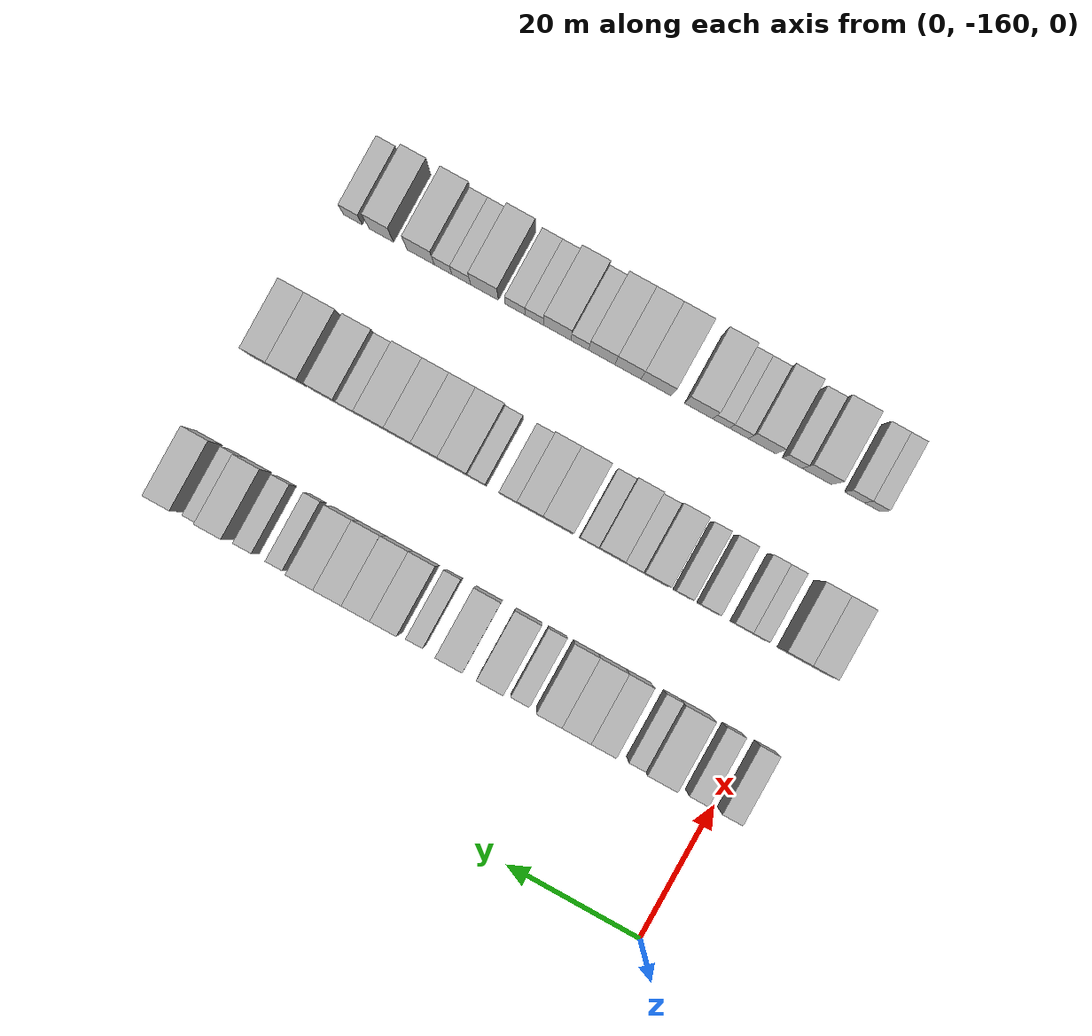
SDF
<sdf version="1.6">
 <world name="default">
  <model name="building_20">
   <static>1</static>
   <pose>25.0000 -161.9389 0 0.000000 0.000000 0.000000</pose>
   <link name="link">
    <pose>0 0 3.00 0 0 0</pose>
    <collision name="collision"><geometry><box><size>10.0000 2.9617 6.0000</size></box></geometry></collision>
    <visual name="visual">
     <cast_shadows>0</cast_shadows>
     <geometry><box><size>10.0000 2.9617 6.0000</size></box></geometry>
     <material>
      <script>
       <uri>model://HANNAS_wall/materials/scripts</uri>
       <uri>model://HANNAS_wall/materials/textures</uri>
       <name>vrc/HANNAS_wall</name>
      </script>
     </material>
    </visual>
   </link>
  </model>
  <model name="building_21">
   <static>1</static>
   <pose>25.0000 -157.0666 0 0.000000 0.000000 0.000000</pose>
   <link name="link">
    <pose>0 0 3.00 0 0 0</pose>
    <collision name="collision"><geometry><box><size>10.0000 2.7829 6.0000</size></box></geometry></collision>
    <visual name="visual">
     <cast_shadows>0</cast_shadows>
     <geometry><box><size>10.0000 2.7829 6.0000</size></box></geometry>
     <material>
      <script>
       <uri>model://HANNAS_wall/materials/scripts</uri>
       <uri>model://HANNAS_wall/materials/textures</uri>
       <name>vrc/HANNAS_wall</name>
      </script>
     </material>
    </visual>
   </link>
  </model>
  <model name="building_22">
   <static>1</static>
   <pose>25.0000 -151.5205 0 0.000000 0.000000 0.000000</pose>
   <link name="link">
    <pose>0 0 4.50 0 0 0</pose>
    <collision name="collision"><geometry><box><size>10.0000 4.3093 9.0000</size></box></geometry></collision>
    <visual name="visual">
     <cast_shadows>0</cast_shadows>
     <geometry><box><size>10.0000 4.3093 9.0000</size></box></geometry>
     <material>
      <script>
       <uri>model://HANNAS_wall/materials/scripts</uri>
       <uri>model://HANNAS_wall/materials/textures</uri>
       <name>vrc/HANNAS_wall</name>
      </script>
     </material>
    </visual>
   </link>
  </model>
  <model name="building_23">
   <static>1</static>
   <pose>25.0000 -148.1344 0 0.000000 0.000000 0.000000</pose>
   <link name="link">
    <pose>0 0 3.00 0 0 0</pose>
    <collision name="collision"><geometry><box><size>10.0000 2.4628 6.0000</size></box></geometry></collision>
    <visual name="visual">
     <cast_shadows>0</cast_shadows>
     <geometry><box><size>10.0000 2.4628 6.0000</size></box></geometry>
     <material>
      <script>
       <uri>model://HANNAS_wall/materials/scripts</uri>
       <uri>model://HANNAS_wall/materials/textures</uri>
       <name>vrc/HANNAS_wall</name>
      </script>
     </material>
    </visual>
   </link>
  </model>
  <model name="building_24">
   <static>1</static>
   <pose>25.0000 -143.0938 0 0.000000 0.000000 0.000000</pose>
   <link name="link">
    <pose>0 0 4.50 0 0 0</pose>
    <collision name="collision"><geometry><box><size>10.0000 3.6184 9.0000</size></box></geometry></collision>
    <visual name="visual">
     <cast_shadows>0</cast_shadows>
     <geometry><box><size>10.0000 3.6184 9.0000</size></box></geometry>
     <material>
      <script>
       <uri>model://HANNAS_wall/materials/scripts</uri>
       <uri>model://HANNAS_wall/materials/textures</uri>
       <name>vrc/HANNAS_wall</name>
      </script>
     </material>
    </visual>
   </link>
  </model>
  <model name="building_25">
   <static>1</static>
   <pose>25.0000 -139.2067 0 0.000000 0.000000 0.000000</pose>
   <link name="link">
    <pose>0 0 4.50 0 0 0</pose>
    <collision name="collision"><geometry><box><size>10.0000 4.1557 9.0000</size></box></geometry></collision>
    <visual name="visual">
     <cast_shadows>0</cast_shadows>
     <geometry><box><size>10.0000 4.1557 9.0000</size></box></geometry>
     <material>
      <script>
       <uri>model://HANNAS_wall/materials/scripts</uri>
       <uri>model://HANNAS_wall/materials/textures</uri>
       <name>vrc/HANNAS_wall</name>
      </script>
     </material>
    </visual>
   </link>
  </model>
  <model name="building_26">
   <static>1</static>
   <pose>25.0000 -135.2966 0 0.000000 0.000000 0.000000</pose>
   <link name="link">
    <pose>0 0 4.50 0 0 0</pose>
    <collision name="collision"><geometry><box><size>10.0000 3.6646 9.0000</size></box></geometry></collision>
    <visual name="visual">
     <cast_shadows>0</cast_shadows>
     <geometry><box><size>10.0000 3.6646 9.0000</size></box></geometry>
     <material>
      <script>
       <uri>model://HANNAS_wall/materials/scripts</uri>
       <uri>model://HANNAS_wall/materials/textures</uri>
       <name>vrc/HANNAS_wall</name>
      </script>
     </material>
    </visual>
   </link>
  </model>
  <model name="building_27">
   <static>1</static>
   <pose>25.0000 -131.1052 0 0.000000 0.000000 0.000000</pose>
   <link name="link">
    <pose>0 0 3.00 0 0 0</pose>
    <collision name="collision"><geometry><box><size>10.0000 2.7181 6.0000</size></box></geometry></collision>
    <visual name="visual">
     <cast_shadows>0</cast_shadows>
     <geometry><box><size>10.0000 2.7181 6.0000</size></box></geometry>
     <material>
      <script>
       <uri>model://HANNAS_wall/materials/scripts</uri>
       <uri>model://HANNAS_wall/materials/textures</uri>
       <name>vrc/HANNAS_wall</name>
      </script>
     </material>
    </visual>
   </link>
  </model>
  <model name="building_28">
   <static>1</static>
   <pose>25.0000 -126.8285 0 0.000000 0.000000 0.000000</pose>
   <link name="link">
    <pose>0 0 4.50 0 0 0</pose>
    <collision name="collision"><geometry><box><size>10.0000 3.8353 9.0000</size></box></geometry></collision>
    <visual name="visual">
     <cast_shadows>0</cast_shadows>
     <geometry><box><size>10.0000 3.8353 9.0000</size></box></geometry>
     <material>
      <script>
       <uri>model://HANNAS_wall/materials/scripts</uri>
       <uri>model://HANNAS_wall/materials/textures</uri>
       <name>vrc/HANNAS_wall</name>
      </script>
     </material>
    </visual>
   </link>
  </model>
  <model name="building_29">
   <static>1</static>
   <pose>25.0000 -120.9563 0 0.000000 0.000000 0.000000</pose>
   <link name="link">
    <pose>0 0 4.50 0 0 0</pose>
    <collision name="collision"><geometry><box><size>10.0000 3.9092 9.0000</size></box></geometry></collision>
    <visual name="visual">
     <cast_shadows>0</cast_shadows>
     <geometry><box><size>10.0000 3.9092 9.0000</size></box></geometry>
     <material>
      <script>
       <uri>model://HANNAS_wall/materials/scripts</uri>
       <uri>model://HANNAS_wall/materials/textures</uri>
       <name>vrc/HANNAS_wall</name>
      </script>
     </material>
    </visual>
   </link>
  </model>
  <model name="building_30">
   <static>1</static>
   <pose>25.0000 -115.7541 0 0.000000 0.000000 0.000000</pose>
   <link name="link">
    <pose>0 0 3.00 0 0 0</pose>
    <collision name="collision"><geometry><box><size>10.0000 2.4952 6.0000</size></box></geometry></collision>
    <visual name="visual">
     <cast_shadows>0</cast_shadows>
     <geometry><box><size>10.0000 2.4952 6.0000</size></box></geometry>
     <material>
      <script>
       <uri>model://HANNAS_wall/materials/scripts</uri>
       <uri>model://HANNAS_wall/materials/textures</uri>
       <name>vrc/HANNAS_wall</name>
      </script>
     </material>
    </visual>
   </link>
  </model>
  <model name="building_31">
   <static>1</static>
   <pose>25.0000 -111.5837 0 0.000000 0.000000 0.000000</pose>
   <link name="link">
    <pose>0 0 4.50 0 0 0</pose>
    <collision name="collision"><geometry><box><size>10.0000 3.8456 9.0000</size></box></geometry></collision>
    <visual name="visual">
     <cast_shadows>0</cast_shadows>
     <geometry><box><size>10.0000 3.8456 9.0000</size></box></geometry>
     <material>
      <script>
       <uri>model://HANNAS_wall/materials/scripts</uri>
       <uri>model://HANNAS_wall/materials/textures</uri>
       <name>vrc/HANNAS_wall</name>
      </script>
     </material>
    </visual>
   </link>
  </model>
  <model name="building_32">
   <static>1</static>
   <pose>25.0000 -107.6422 0 0.000000 0.000000 0.000000</pose>
   <link name="link">
    <pose>0 0 4.50 0 0 0</pose>
    <collision name="collision"><geometry><box><size>10.0000 4.0375 9.0000</size></box></geometry></collision>
    <visual name="visual">
     <cast_shadows>0</cast_shadows>
     <geometry><box><size>10.0000 4.0375 9.0000</size></box></geometry>
     <material>
      <script>
       <uri>model://HANNAS_wall/materials/scripts</uri>
       <uri>model://HANNAS_wall/materials/textures</uri>
       <name>vrc/HANNAS_wall</name>
      </script>
     </material>
    </visual>
   </link>
  </model>
  <model name="building_33">
   <static>1</static>
   <pose>25.0000 -103.5976 0 0.000000 0.000000 0.000000</pose>
   <link name="link">
    <pose>0 0 4.50 0 0 0</pose>
    <collision name="collision"><geometry><box><size>10.0000 4.0516 9.0000</size></box></geometry></collision>
    <visual name="visual">
     <cast_shadows>0</cast_shadows>
     <geometry><box><size>10.0000 4.0516 9.0000</size></box></geometry>
     <material>
      <script>
       <uri>model://HANNAS_wall/materials/scripts</uri>
       <uri>model://HANNAS_wall/materials/textures</uri>
       <name>vrc/HANNAS_wall</name>
      </script>
     </material>
    </visual>
   </link>
  </model>
  <model name="building_34">
   <static>1</static>
   <pose>25.0000 -99.6055 0 0.000000 0.000000 0.000000</pose>
   <link name="link">
    <pose>0 0 4.50 0 0 0</pose>
    <collision name="collision"><geometry><box><size>10.0000 3.9325 9.0000</size></box></geometry></collision>
    <visual name="visual">
     <cast_shadows>0</cast_shadows>
     <geometry><box><size>10.0000 3.9325 9.0000</size></box></geometry>
     <material>
      <script>
       <uri>model://HANNAS_wall/materials/scripts</uri>
       <uri>model://HANNAS_wall/materials/textures</uri>
       <name>vrc/HANNAS_wall</name>
      </script>
     </material>
    </visual>
   </link>
  </model>
  <model name="building_35">
   <static>1</static>
   <pose>25.0000 -95.4043 0 0.000000 0.000000 0.000000</pose>
   <link name="link">
    <pose>0 0 3.00 0 0 0</pose>
    <collision name="collision"><geometry><box><size>10.0000 2.4700 6.0000</size></box></geometry></collision>
    <visual name="visual">
     <cast_shadows>0</cast_shadows>
     <geometry><box><size>10.0000 2.4700 6.0000</size></box></geometry>
     <material>
      <script>
       <uri>model://HANNAS_wall/materials/scripts</uri>
       <uri>model://HANNAS_wall/materials/textures</uri>
       <name>vrc/HANNAS_wall</name>
      </script>
     </material>
    </visual>
   </link>
  </model>
  <model name="building_36">
   <static>1</static>
   <pose>25.0000 -90.8186 0 0.000000 0.000000 0.000000</pose>
   <link name="link">
    <pose>0 0 3.00 0 0 0</pose>
    <collision name="collision"><geometry><box><size>10.0000 2.7014 6.0000</size></box></geometry></collision>
    <visual name="visual">
     <cast_shadows>0</cast_shadows>
     <geometry><box><size>10.0000 2.7014 6.0000</size></box></geometry>
     <material>
      <script>
       <uri>model://HANNAS_wall/materials/scripts</uri>
       <uri>model://HANNAS_wall/materials/textures</uri>
       <name>vrc/HANNAS_wall</name>
      </script>
     </material>
    </visual>
   </link>
  </model>
  <model name="building_37">
   <static>1</static>
   <pose>25.0000 -86.5181 0 0.000000 0.000000 0.000000</pose>
   <link name="link">
    <pose>0 0 4.50 0 0 0</pose>
    <collision name="collision"><geometry><box><size>10.0000 3.8995 9.0000</size></box></geometry></collision>
    <visual name="visual">
     <cast_shadows>0</cast_shadows>
     <geometry><box><size>10.0000 3.8995 9.0000</size></box></geometry>
     <material>
      <script>
       <uri>model://HANNAS_wall/materials/scripts</uri>
       <uri>model://HANNAS_wall/materials/textures</uri>
       <name>vrc/HANNAS_wall</name>
      </script>
     </material>
    </visual>
   </link>
  </model>
  <model name="building_38">
   <static>1</static>
   <pose>25.0000 -83.3470 0 0.000000 0.000000 0.000000</pose>
   <link name="link">
    <pose>0 0 3.00 0 0 0</pose>
    <collision name="collision"><geometry><box><size>10.0000 2.4427 6.0000</size></box></geometry></collision>
    <visual name="visual">
     <cast_shadows>0</cast_shadows>
     <geometry><box><size>10.0000 2.4427 6.0000</size></box></geometry>
     <material>
      <script>
       <uri>model://HANNAS_wall/materials/scripts</uri>
       <uri>model://HANNAS_wall/materials/textures</uri>
       <name>vrc/HANNAS_wall</name>
      </script>
     </material>
    </visual>
   </link>
  </model>
  <model name="building_39">
   <static>1</static>
   <pose>25.0000 -79.1743 0 0.000000 0.000000 0.000000</pose>
   <link name="link">
    <pose>0 0 4.50 0 0 0</pose>
    <collision name="collision"><geometry><box><size>10.0000 3.9026 9.0000</size></box></geometry></collision>
    <visual name="visual">
     <cast_shadows>0</cast_shadows>
     <geometry><box><size>10.0000 3.9026 9.0000</size></box></geometry>
     <material>
      <script>
       <uri>model://HANNAS_wall/materials/scripts</uri>
       <uri>model://HANNAS_wall/materials/textures</uri>
       <name>vrc/HANNAS_wall</name>
      </script>
     </material>
    </visual>
   </link>
  </model>
  <model name="building_150">
   <static>1</static>
   <pose>47.0000 -162.6714 0 0.000000 0.000000 0.000000</pose>
   <link name="link">
    <pose>0 0 4.50 0 0 0</pose>
    <collision name="collision"><geometry><box><size>10.0000 3.7032 9.0000</size></box></geometry></collision>
    <visual name="visual">
     <cast_shadows>0</cast_shadows>
     <geometry><box><size>10.0000 3.7032 9.0000</size></box></geometry>
     <material>
      <script>
       <uri>model://HANNAS_wall/materials/scripts</uri>
       <uri>model://HANNAS_wall/materials/textures</uri>
       <name>vrc/HANNAS_wall</name>
      </script>
     </material>
    </visual>
   </link>
  </model>
  <model name="building_151">
   <static>1</static>
   <pose>47.0000 -159.0022 0 0.000000 0.000000 0.000000</pose>
   <link name="link">
    <pose>0 0 4.50 0 0 0</pose>
    <collision name="collision"><geometry><box><size>10.0000 3.6352 9.0000</size></box></geometry></collision>
    <visual name="visual">
     <cast_shadows>0</cast_shadows>
     <geometry><box><size>10.0000 3.6352 9.0000</size></box></geometry>
     <material>
      <script>
       <uri>model://HANNAS_wall/materials/scripts</uri>
       <uri>model://HANNAS_wall/materials/textures</uri>
       <name>vrc/HANNAS_wall</name>
      </script>
     </material>
    </visual>
   </link>
  </model>
  <model name="building_152">
   <static>1</static>
   <pose>47.0000 -153.9766 0 0.000000 0.000000 0.000000</pose>
   <link name="link">
    <pose>0 0 3.00 0 0 0</pose>
    <collision name="collision"><geometry><box><size>10.0000 2.4161 6.0000</size></box></geometry></collision>
    <visual name="visual">
     <cast_shadows>0</cast_shadows>
     <geometry><box><size>10.0000 2.4161 6.0000</size></box></geometry>
     <material>
      <script>
       <uri>model://HANNAS_wall/materials/scripts</uri>
       <uri>model://HANNAS_wall/materials/textures</uri>
       <name>vrc/HANNAS_wall</name>
      </script>
     </material>
    </visual>
   </link>
  </model>
  <model name="building_153">
   <static>1</static>
   <pose>47.0000 -151.4672 0 0.000000 0.000000 0.000000</pose>
   <link name="link">
    <pose>0 0 3.00 0 0 0</pose>
    <collision name="collision"><geometry><box><size>10.0000 2.6027 6.0000</size></box></geometry></collision>
    <visual name="visual">
     <cast_shadows>0</cast_shadows>
     <geometry><box><size>10.0000 2.6027 6.0000</size></box></geometry>
     <material>
      <script>
       <uri>model://HANNAS_wall/materials/scripts</uri>
       <uri>model://HANNAS_wall/materials/textures</uri>
       <name>vrc/HANNAS_wall</name>
      </script>
     </material>
    </visual>
   </link>
  </model>
  <model name="building_154">
   <static>1</static>
   <pose>47.0000 -146.6826 0 0.000000 0.000000 0.000000</pose>
   <link name="link">
    <pose>0 0 3.00 0 0 0</pose>
    <collision name="collision"><geometry><box><size>10.0000 2.9665 6.0000</size></box></geometry></collision>
    <visual name="visual">
     <cast_shadows>0</cast_shadows>
     <geometry><box><size>10.0000 2.9665 6.0000</size></box></geometry>
     <material>
      <script>
       <uri>model://HANNAS_wall/materials/scripts</uri>
       <uri>model://HANNAS_wall/materials/textures</uri>
       <name>vrc/HANNAS_wall</name>
      </script>
     </material>
    </visual>
   </link>
  </model>
  <model name="building_155">
   <static>1</static>
   <pose>47.0000 -142.9178 0 0.000000 0.000000 0.000000</pose>
   <link name="link">
    <pose>0 0 3.00 0 0 0</pose>
    <collision name="collision"><geometry><box><size>10.0000 2.5632 6.0000</size></box></geometry></collision>
    <visual name="visual">
     <cast_shadows>0</cast_shadows>
     <geometry><box><size>10.0000 2.5632 6.0000</size></box></geometry>
     <material>
      <script>
       <uri>model://HANNAS_wall/materials/scripts</uri>
       <uri>model://HANNAS_wall/materials/textures</uri>
       <name>vrc/HANNAS_wall</name>
      </script>
     </material>
    </visual>
   </link>
  </model>
  <model name="building_156">
   <static>1</static>
   <pose>47.0000 -138.7678 0 0.000000 0.000000 0.000000</pose>
   <link name="link">
    <pose>0 0 4.50 0 0 0</pose>
    <collision name="collision"><geometry><box><size>10.0000 3.7367 9.0000</size></box></geometry></collision>
    <visual name="visual">
     <cast_shadows>0</cast_shadows>
     <geometry><box><size>10.0000 3.7367 9.0000</size></box></geometry>
     <material>
      <script>
       <uri>model://HANNAS_wall/materials/scripts</uri>
       <uri>model://HANNAS_wall/materials/textures</uri>
       <name>vrc/HANNAS_wall</name>
      </script>
     </material>
    </visual>
   </link>
  </model>
  <model name="building_157">
   <static>1</static>
   <pose>47.0000 -135.4979 0 0.000000 0.000000 0.000000</pose>
   <link name="link">
    <pose>0 0 3.00 0 0 0</pose>
    <collision name="collision"><geometry><box><size>10.0000 2.8031 6.0000</size></box></geometry></collision>
    <visual name="visual">
     <cast_shadows>0</cast_shadows>
     <geometry><box><size>10.0000 2.8031 6.0000</size></box></geometry>
     <material>
      <script>
       <uri>model://HANNAS_wall/materials/scripts</uri>
       <uri>model://HANNAS_wall/materials/textures</uri>
       <name>vrc/HANNAS_wall</name>
      </script>
     </material>
    </visual>
   </link>
  </model>
  <model name="building_158">
   <static>1</static>
   <pose>47.0000 -132.2518 0 0.000000 0.000000 0.000000</pose>
   <link name="link">
    <pose>0 0 4.50 0 0 0</pose>
    <collision name="collision"><geometry><box><size>10.0000 3.6890 9.0000</size></box></geometry></collision>
    <visual name="visual">
     <cast_shadows>0</cast_shadows>
     <geometry><box><size>10.0000 3.6890 9.0000</size></box></geometry>
     <material>
      <script>
       <uri>model://HANNAS_wall/materials/scripts</uri>
       <uri>model://HANNAS_wall/materials/textures</uri>
       <name>vrc/HANNAS_wall</name>
      </script>
     </material>
    </visual>
   </link>
  </model>
  <model name="building_159">
   <static>1</static>
   <pose>47.0000 -129.0463 0 0.000000 0.000000 0.000000</pose>
   <link name="link">
    <pose>0 0 3.00 0 0 0</pose>
    <collision name="collision"><geometry><box><size>10.0000 2.7220 6.0000</size></box></geometry></collision>
    <visual name="visual">
     <cast_shadows>0</cast_shadows>
     <geometry><box><size>10.0000 2.7220 6.0000</size></box></geometry>
     <material>
      <script>
       <uri>model://HANNAS_wall/materials/scripts</uri>
       <uri>model://HANNAS_wall/materials/textures</uri>
       <name>vrc/HANNAS_wall</name>
      </script>
     </material>
    </visual>
   </link>
  </model>
  <model name="building_160">
   <static>1</static>
   <pose>47.0000 -124.4881 0 0.000000 0.000000 0.000000</pose>
   <link name="link">
    <pose>0 0 4.50 0 0 0</pose>
    <collision name="collision"><geometry><box><size>10.0000 4.3946 9.0000</size></box></geometry></collision>
    <visual name="visual">
     <cast_shadows>0</cast_shadows>
     <geometry><box><size>10.0000 4.3946 9.0000</size></box></geometry>
     <material>
      <script>
       <uri>model://HANNAS_wall/materials/scripts</uri>
       <uri>model://HANNAS_wall/materials/textures</uri>
       <name>vrc/HANNAS_wall</name>
      </script>
     </material>
    </visual>
   </link>
  </model>
  <model name="building_161">
   <static>1</static>
   <pose>47.0000 -120.4135 0 0.000000 0.000000 0.000000</pose>
   <link name="link">
    <pose>0 0 4.50 0 0 0</pose>
    <collision name="collision"><geometry><box><size>10.0000 3.7545 9.0000</size></box></geometry></collision>
    <visual name="visual">
     <cast_shadows>0</cast_shadows>
     <geometry><box><size>10.0000 3.7545 9.0000</size></box></geometry>
     <material>
      <script>
       <uri>model://HANNAS_wall/materials/scripts</uri>
       <uri>model://HANNAS_wall/materials/textures</uri>
       <name>vrc/HANNAS_wall</name>
      </script>
     </material>
    </visual>
   </link>
  </model>
  <model name="building_162">
   <static>1</static>
   <pose>47.0000 -117.2018 0 0.000000 0.000000 0.000000</pose>
   <link name="link">
    <pose>0 0 3.00 0 0 0</pose>
    <collision name="collision"><geometry><box><size>10.0000 2.6690 6.0000</size></box></geometry></collision>
    <visual name="visual">
     <cast_shadows>0</cast_shadows>
     <geometry><box><size>10.0000 2.6690 6.0000</size></box></geometry>
     <material>
      <script>
       <uri>model://HANNAS_wall/materials/scripts</uri>
       <uri>model://HANNAS_wall/materials/textures</uri>
       <name>vrc/HANNAS_wall</name>
      </script>
     </material>
    </visual>
   </link>
  </model>
  <model name="building_163">
   <static>1</static>
   <pose>47.0000 -112.5708 0 0.000000 0.000000 0.000000</pose>
   <link name="link">
    <pose>0 0 3.00 0 0 0</pose>
    <collision name="collision"><geometry><box><size>10.0000 2.5929 6.0000</size></box></geometry></collision>
    <visual name="visual">
     <cast_shadows>0</cast_shadows>
     <geometry><box><size>10.0000 2.5929 6.0000</size></box></geometry>
     <material>
      <script>
       <uri>model://HANNAS_wall/materials/scripts</uri>
       <uri>model://HANNAS_wall/materials/textures</uri>
       <name>vrc/HANNAS_wall</name>
      </script>
     </material>
    </visual>
   </link>
  </model>
  <model name="building_164">
   <static>1</static>
   <pose>47.0000 -109.1921 0 0.000000 0.000000 0.000000</pose>
   <link name="link">
    <pose>0 0 4.50 0 0 0</pose>
    <collision name="collision"><geometry><box><size>10.0000 4.1646 9.0000</size></box></geometry></collision>
    <visual name="visual">
     <cast_shadows>0</cast_shadows>
     <geometry><box><size>10.0000 4.1646 9.0000</size></box></geometry>
     <material>
      <script>
       <uri>model://HANNAS_wall/materials/scripts</uri>
       <uri>model://HANNAS_wall/materials/textures</uri>
       <name>vrc/HANNAS_wall</name>
      </script>
     </material>
    </visual>
   </link>
  </model>
  <model name="building_165">
   <static>1</static>
   <pose>47.0000 -105.2063 0 0.000000 0.000000 0.000000</pose>
   <link name="link">
    <pose>0 0 4.50 0 0 0</pose>
    <collision name="collision"><geometry><box><size>10.0000 3.8069 9.0000</size></box></geometry></collision>
    <visual name="visual">
     <cast_shadows>0</cast_shadows>
     <geometry><box><size>10.0000 3.8069 9.0000</size></box></geometry>
     <material>
      <script>
       <uri>model://HANNAS_wall/materials/scripts</uri>
       <uri>model://HANNAS_wall/materials/textures</uri>
       <name>vrc/HANNAS_wall</name>
      </script>
     </material>
    </visual>
   </link>
  </model>
  <model name="building_166">
   <static>1</static>
   <pose>47.0000 -101.3747 0 0.000000 0.000000 0.000000</pose>
   <link name="link">
    <pose>0 0 4.50 0 0 0</pose>
    <collision name="collision"><geometry><box><size>10.0000 3.8563 9.0000</size></box></geometry></collision>
    <visual name="visual">
     <cast_shadows>0</cast_shadows>
     <geometry><box><size>10.0000 3.8563 9.0000</size></box></geometry>
     <material>
      <script>
       <uri>model://HANNAS_wall/materials/scripts</uri>
       <uri>model://HANNAS_wall/materials/textures</uri>
       <name>vrc/HANNAS_wall</name>
      </script>
     </material>
    </visual>
   </link>
  </model>
  <model name="building_167">
   <static>1</static>
   <pose>47.0000 -97.2710 0 0.000000 0.000000 0.000000</pose>
   <link name="link">
    <pose>0 0 4.50 0 0 0</pose>
    <collision name="collision"><geometry><box><size>10.0000 4.3513 9.0000</size></box></geometry></collision>
    <visual name="visual">
     <cast_shadows>0</cast_shadows>
     <geometry><box><size>10.0000 4.3513 9.0000</size></box></geometry>
     <material>
      <script>
       <uri>model://HANNAS_wall/materials/scripts</uri>
       <uri>model://HANNAS_wall/materials/textures</uri>
       <name>vrc/HANNAS_wall</name>
      </script>
     </material>
    </visual>
   </link>
  </model>
  <model name="building_168">
   <static>1</static>
   <pose>47.0000 -93.6409 0 0.000000 0.000000 0.000000</pose>
   <link name="link">
    <pose>0 0 3.00 0 0 0</pose>
    <collision name="collision"><geometry><box><size>10.0000 2.9088 6.0000</size></box></geometry></collision>
    <visual name="visual">
     <cast_shadows>0</cast_shadows>
     <geometry><box><size>10.0000 2.9088 6.0000</size></box></geometry>
     <material>
      <script>
       <uri>model://HANNAS_wall/materials/scripts</uri>
       <uri>model://HANNAS_wall/materials/textures</uri>
       <name>vrc/HANNAS_wall</name>
      </script>
     </material>
    </visual>
   </link>
  </model>
  <model name="building_169">
   <static>1</static>
   <pose>47.0000 -90.1140 0 0.000000 0.000000 0.000000</pose>
   <link name="link">
    <pose>0 0 4.50 0 0 0</pose>
    <collision name="collision"><geometry><box><size>10.0000 4.1450 9.0000</size></box></geometry></collision>
    <visual name="visual">
     <cast_shadows>0</cast_shadows>
     <geometry><box><size>10.0000 4.1450 9.0000</size></box></geometry>
     <material>
      <script>
       <uri>model://HANNAS_wall/materials/scripts</uri>
       <uri>model://HANNAS_wall/materials/textures</uri>
       <name>vrc/HANNAS_wall</name>
      </script>
     </material>
    </visual>
   </link>
  </model>
  <model name="building_170">
   <static>1</static>
   <pose>47.0000 -84.8280 0 0.000000 0.000000 0.000000</pose>
   <link name="link">
    <pose>0 0 4.50 0 0 0</pose>
    <collision name="collision"><geometry><box><size>10.0000 4.4270 9.0000</size></box></geometry></collision>
    <visual name="visual">
     <cast_shadows>0</cast_shadows>
     <geometry><box><size>10.0000 4.4270 9.0000</size></box></geometry>
     <material>
      <script>
       <uri>model://HANNAS_wall/materials/scripts</uri>
       <uri>model://HANNAS_wall/materials/textures</uri>
       <name>vrc/HANNAS_wall</name>
      </script>
     </material>
    </visual>
   </link>
  </model>
  <model name="building_171">
   <static>1</static>
   <pose>47.0000 -80.7574 0 0.000000 0.000000 0.000000</pose>
   <link name="link">
    <pose>0 0 4.50 0 0 0</pose>
    <collision name="collision"><geometry><box><size>10.0000 3.7143 9.0000</size></box></geometry></collision>
    <visual name="visual">
     <cast_shadows>0</cast_shadows>
     <geometry><box><size>10.0000 3.7143 9.0000</size></box></geometry>
     <material>
      <script>
       <uri>model://HANNAS_wall/materials/scripts</uri>
       <uri>model://HANNAS_wall/materials/textures</uri>
       <name>vrc/HANNAS_wall</name>
      </script>
     </material>
    </visual>
   </link>
  </model>
  <model name="building_277">
   <static>1</static>
   <pose>69.0000 -159.2032 0 0.000000 0.000000 0.000000</pose>
   <link name="link">
    <pose>0 0 3.00 0 0 0</pose>
    <collision name="collision"><geometry><box><size>10.0000 2.4557 6.0000</size></box></geometry></collision>
    <visual name="visual">
     <cast_shadows>0</cast_shadows>
     <geometry><box><size>10.0000 2.4557 6.0000</size></box></geometry>
     <material>
      <script>
       <uri>model://HANNAS_wall/materials/scripts</uri>
       <uri>model://HANNAS_wall/materials/textures</uri>
       <name>vrc/HANNAS_wall</name>
      </script>
     </material>
    </visual>
   </link>
  </model>
  <model name="building_278">
   <static>1</static>
   <pose>69.0000 -156.5355 0 0.000000 0.000000 0.000000</pose>
   <link name="link">
    <pose>0 0 3.00 0 0 0</pose>
    <collision name="collision"><geometry><box><size>10.0000 2.8797 6.0000</size></box></geometry></collision>
    <visual name="visual">
     <cast_shadows>0</cast_shadows>
     <geometry><box><size>10.0000 2.8797 6.0000</size></box></geometry>
     <material>
      <script>
       <uri>model://HANNAS_wall/materials/scripts</uri>
       <uri>model://HANNAS_wall/materials/textures</uri>
       <name>vrc/HANNAS_wall</name>
      </script>
     </material>
    </visual>
   </link>
  </model>
  <model name="building_279">
   <static>1</static>
   <pose>69.0000 -150.9187 0 0.000000 0.000000 0.000000</pose>
   <link name="link">
    <pose>0 0 4.50 0 0 0</pose>
    <collision name="collision"><geometry><box><size>10.0000 4.3540 9.0000</size></box></geometry></collision>
    <visual name="visual">
     <cast_shadows>0</cast_shadows>
     <geometry><box><size>10.0000 4.3540 9.0000</size></box></geometry>
     <material>
      <script>
       <uri>model://HANNAS_wall/materials/scripts</uri>
       <uri>model://HANNAS_wall/materials/textures</uri>
       <name>vrc/HANNAS_wall</name>
      </script>
     </material>
    </visual>
   </link>
  </model>
  <model name="building_280">
   <static>1</static>
   <pose>69.0000 -147.2857 0 0.000000 0.000000 0.000000</pose>
   <link name="link">
    <pose>0 0 3.00 0 0 0</pose>
    <collision name="collision"><geometry><box><size>10.0000 2.9120 6.0000</size></box></geometry></collision>
    <visual name="visual">
     <cast_shadows>0</cast_shadows>
     <geometry><box><size>10.0000 2.9120 6.0000</size></box></geometry>
     <material>
      <script>
       <uri>model://HANNAS_wall/materials/scripts</uri>
       <uri>model://HANNAS_wall/materials/textures</uri>
       <name>vrc/HANNAS_wall</name>
      </script>
     </material>
    </visual>
   </link>
  </model>
  <model name="building_281">
   <static>1</static>
   <pose>69.0000 -142.7802 0 0.000000 0.000000 0.000000</pose>
   <link name="link">
    <pose>0 0 4.50 0 0 0</pose>
    <collision name="collision"><geometry><box><size>10.0000 4.0991 9.0000</size></box></geometry></collision>
    <visual name="visual">
     <cast_shadows>0</cast_shadows>
     <geometry><box><size>10.0000 4.0991 9.0000</size></box></geometry>
     <material>
      <script>
       <uri>model://HANNAS_wall/materials/scripts</uri>
       <uri>model://HANNAS_wall/materials/textures</uri>
       <name>vrc/HANNAS_wall</name>
      </script>
     </material>
    </visual>
   </link>
  </model>
  <model name="building_282">
   <static>1</static>
   <pose>69.0000 -139.3374 0 0.000000 0.000000 0.000000</pose>
   <link name="link">
    <pose>0 0 3.00 0 0 0</pose>
    <collision name="collision"><geometry><box><size>10.0000 2.7864 6.0000</size></box></geometry></collision>
    <visual name="visual">
     <cast_shadows>0</cast_shadows>
     <geometry><box><size>10.0000 2.7864 6.0000</size></box></geometry>
     <material>
      <script>
       <uri>model://HANNAS_wall/materials/scripts</uri>
       <uri>model://HANNAS_wall/materials/textures</uri>
       <name>vrc/HANNAS_wall</name>
      </script>
     </material>
    </visual>
   </link>
  </model>
  <model name="building_283">
   <static>1</static>
   <pose>69.0000 -136.6814 0 0.000000 0.000000 0.000000</pose>
   <link name="link">
    <pose>0 0 3.00 0 0 0</pose>
    <collision name="collision"><geometry><box><size>10.0000 2.5257 6.0000</size></box></geometry></collision>
    <visual name="visual">
     <cast_shadows>0</cast_shadows>
     <geometry><box><size>10.0000 2.5257 6.0000</size></box></geometry>
     <material>
      <script>
       <uri>model://HANNAS_wall/materials/scripts</uri>
       <uri>model://HANNAS_wall/materials/textures</uri>
       <name>vrc/HANNAS_wall</name>
      </script>
     </material>
    </visual>
   </link>
  </model>
  <model name="building_284">
   <static>1</static>
   <pose>69.0000 -133.3264 0 0.000000 0.000000 0.000000</pose>
   <link name="link">
    <pose>0 0 4.50 0 0 0</pose>
    <collision name="collision"><geometry><box><size>10.0000 4.1842 9.0000</size></box></geometry></collision>
    <visual name="visual">
     <cast_shadows>0</cast_shadows>
     <geometry><box><size>10.0000 4.1842 9.0000</size></box></geometry>
     <material>
      <script>
       <uri>model://HANNAS_wall/materials/scripts</uri>
       <uri>model://HANNAS_wall/materials/textures</uri>
       <name>vrc/HANNAS_wall</name>
      </script>
     </material>
    </visual>
   </link>
  </model>
  <model name="building_285">
   <static>1</static>
   <pose>69.0000 -126.9853 0 0.000000 0.000000 0.000000</pose>
   <link name="link">
    <pose>0 0 4.50 0 0 0</pose>
    <collision name="collision"><geometry><box><size>10.0000 4.4981 9.0000</size></box></geometry></collision>
    <visual name="visual">
     <cast_shadows>0</cast_shadows>
     <geometry><box><size>10.0000 4.4981 9.0000</size></box></geometry>
     <material>
      <script>
       <uri>model://HANNAS_wall/materials/scripts</uri>
       <uri>model://HANNAS_wall/materials/textures</uri>
       <name>vrc/HANNAS_wall</name>
      </script>
     </material>
    </visual>
   </link>
  </model>
  <model name="building_286">
   <static>1</static>
   <pose>69.0000 -122.7866 0 0.000000 0.000000 0.000000</pose>
   <link name="link">
    <pose>0 0 4.50 0 0 0</pose>
    <collision name="collision"><geometry><box><size>10.0000 3.8992 9.0000</size></box></geometry></collision>
    <visual name="visual">
     <cast_shadows>0</cast_shadows>
     <geometry><box><size>10.0000 3.8992 9.0000</size></box></geometry>
     <material>
      <script>
       <uri>model://HANNAS_wall/materials/scripts</uri>
       <uri>model://HANNAS_wall/materials/textures</uri>
       <name>vrc/HANNAS_wall</name>
      </script>
     </material>
    </visual>
   </link>
  </model>
  <model name="building_287">
   <static>1</static>
   <pose>69.0000 -118.8734 0 0.000000 0.000000 0.000000</pose>
   <link name="link">
    <pose>0 0 4.50 0 0 0</pose>
    <collision name="collision"><geometry><box><size>10.0000 3.9273 9.0000</size></box></geometry></collision>
    <visual name="visual">
     <cast_shadows>0</cast_shadows>
     <geometry><box><size>10.0000 3.9273 9.0000</size></box></geometry>
     <material>
      <script>
       <uri>model://HANNAS_wall/materials/scripts</uri>
       <uri>model://HANNAS_wall/materials/textures</uri>
       <name>vrc/HANNAS_wall</name>
      </script>
     </material>
    </visual>
   </link>
  </model>
  <model name="building_288">
   <static>1</static>
   <pose>69.0000 -115.5879 0 0.000000 0.000000 0.000000</pose>
   <link name="link">
    <pose>0 0 3.00 0 0 0</pose>
    <collision name="collision"><geometry><box><size>10.0000 2.6436 6.0000</size></box></geometry></collision>
    <visual name="visual">
     <cast_shadows>0</cast_shadows>
     <geometry><box><size>10.0000 2.6436 6.0000</size></box></geometry>
     <material>
      <script>
       <uri>model://HANNAS_wall/materials/scripts</uri>
       <uri>model://HANNAS_wall/materials/textures</uri>
       <name>vrc/HANNAS_wall</name>
      </script>
     </material>
    </visual>
   </link>
  </model>
  <model name="building_289">
   <static>1</static>
   <pose>69.0000 -112.2310 0 0.000000 0.000000 0.000000</pose>
   <link name="link">
    <pose>0 0 4.50 0 0 0</pose>
    <collision name="collision"><geometry><box><size>10.0000 4.0703 9.0000</size></box></geometry></collision>
    <visual name="visual">
     <cast_shadows>0</cast_shadows>
     <geometry><box><size>10.0000 4.0703 9.0000</size></box></geometry>
     <material>
      <script>
       <uri>model://HANNAS_wall/materials/scripts</uri>
       <uri>model://HANNAS_wall/materials/textures</uri>
       <name>vrc/HANNAS_wall</name>
      </script>
     </material>
    </visual>
   </link>
  </model>
  <model name="building_290">
   <static>1</static>
   <pose>69.0000 -108.8067 0 0.000000 0.000000 0.000000</pose>
   <link name="link">
    <pose>0 0 3.00 0 0 0</pose>
    <collision name="collision"><geometry><box><size>10.0000 2.7783 6.0000</size></box></geometry></collision>
    <visual name="visual">
     <cast_shadows>0</cast_shadows>
     <geometry><box><size>10.0000 2.7783 6.0000</size></box></geometry>
     <material>
      <script>
       <uri>model://HANNAS_wall/materials/scripts</uri>
       <uri>model://HANNAS_wall/materials/textures</uri>
       <name>vrc/HANNAS_wall</name>
      </script>
     </material>
    </visual>
   </link>
  </model>
  <model name="building_291">
   <static>1</static>
   <pose>69.0000 -105.9449 0 0.000000 0.000000 0.000000</pose>
   <link name="link">
    <pose>0 0 3.00 0 0 0</pose>
    <collision name="collision"><geometry><box><size>10.0000 2.9453 6.0000</size></box></geometry></collision>
    <visual name="visual">
     <cast_shadows>0</cast_shadows>
     <geometry><box><size>10.0000 2.9453 6.0000</size></box></geometry>
     <material>
      <script>
       <uri>model://HANNAS_wall/materials/scripts</uri>
       <uri>model://HANNAS_wall/materials/textures</uri>
       <name>vrc/HANNAS_wall</name>
      </script>
     </material>
    </visual>
   </link>
  </model>
  <model name="building_292">
   <static>1</static>
   <pose>69.0000 -101.3978 0 0.000000 0.000000 0.000000</pose>
   <link name="link">
    <pose>0 0 4.50 0 0 0</pose>
    <collision name="collision"><geometry><box><size>10.0000 4.1488 9.0000</size></box></geometry></collision>
    <visual name="visual">
     <cast_shadows>0</cast_shadows>
     <geometry><box><size>10.0000 4.1488 9.0000</size></box></geometry>
     <material>
      <script>
       <uri>model://HANNAS_wall/materials/scripts</uri>
       <uri>model://HANNAS_wall/materials/textures</uri>
       <name>vrc/HANNAS_wall</name>
      </script>
     </material>
    </visual>
   </link>
  </model>
  <model name="building_293">
   <static>1</static>
   <pose>69.0000 -97.9274 0 0.000000 0.000000 0.000000</pose>
   <link name="link">
    <pose>0 0 3.00 0 0 0</pose>
    <collision name="collision"><geometry><box><size>10.0000 2.7919 6.0000</size></box></geometry></collision>
    <visual name="visual">
     <cast_shadows>0</cast_shadows>
     <geometry><box><size>10.0000 2.7919 6.0000</size></box></geometry>
     <material>
      <script>
       <uri>model://HANNAS_wall/materials/scripts</uri>
       <uri>model://HANNAS_wall/materials/textures</uri>
       <name>vrc/HANNAS_wall</name>
      </script>
     </material>
    </visual>
   </link>
  </model>
  <model name="building_294">
   <static>1</static>
   <pose>69.0000 -95.2248 0 0.000000 0.000000 0.000000</pose>
   <link name="link">
    <pose>0 0 3.00 0 0 0</pose>
    <collision name="collision"><geometry><box><size>10.0000 2.6134 6.0000</size></box></geometry></collision>
    <visual name="visual">
     <cast_shadows>0</cast_shadows>
     <geometry><box><size>10.0000 2.6134 6.0000</size></box></geometry>
     <material>
      <script>
       <uri>model://HANNAS_wall/materials/scripts</uri>
       <uri>model://HANNAS_wall/materials/textures</uri>
       <name>vrc/HANNAS_wall</name>
      </script>
     </material>
    </visual>
   </link>
  </model>
  <model name="building_295">
   <static>1</static>
   <pose>69.0000 -91.8876 0 0.000000 0.000000 0.000000</pose>
   <link name="link">
    <pose>0 0 4.50 0 0 0</pose>
    <collision name="collision"><geometry><box><size>10.0000 4.0609 9.0000</size></box></geometry></collision>
    <visual name="visual">
     <cast_shadows>0</cast_shadows>
     <geometry><box><size>10.0000 4.0609 9.0000</size></box></geometry>
     <material>
      <script>
       <uri>model://HANNAS_wall/materials/scripts</uri>
       <uri>model://HANNAS_wall/materials/textures</uri>
       <name>vrc/HANNAS_wall</name>
      </script>
     </material>
    </visual>
   </link>
  </model>
  <model name="building_296">
   <static>1</static>
   <pose>69.0000 -86.0184 0 0.000000 0.000000 0.000000</pose>
   <link name="link">
    <pose>0 0 4.50 0 0 0</pose>
    <collision name="collision"><geometry><box><size>10.0000 3.6775 9.0000</size></box></geometry></collision>
    <visual name="visual">
     <cast_shadows>0</cast_shadows>
     <geometry><box><size>10.0000 3.6775 9.0000</size></box></geometry>
     <material>
      <script>
       <uri>model://HANNAS_wall/materials/scripts</uri>
       <uri>model://HANNAS_wall/materials/textures</uri>
       <name>vrc/HANNAS_wall</name>
      </script>
     </material>
    </visual>
   </link>
  </model>
  <model name="building_297">
   <static>1</static>
   <pose>69.0000 -81.7793 0 0.000000 0.000000 0.000000</pose>
   <link name="link">
    <pose>0 0 3.00 0 0 0</pose>
    <collision name="collision"><geometry><box><size>10.0000 2.8007 6.0000</size></box></geometry></collision>
    <visual name="visual">
     <cast_shadows>0</cast_shadows>
     <geometry><box><size>10.0000 2.8007 6.0000</size></box></geometry>
     <material>
      <script>
       <uri>model://HANNAS_wall/materials/scripts</uri>
       <uri>model://HANNAS_wall/materials/textures</uri>
       <name>vrc/HANNAS_wall</name>
      </script>
     </material>
    </visual>
   </link>
  </model>
 </world>
</sdf>
